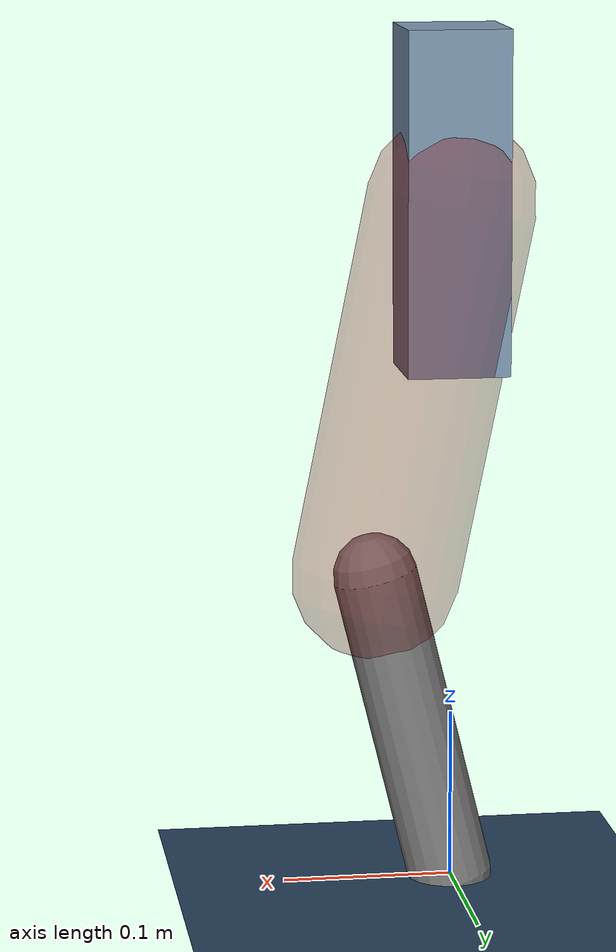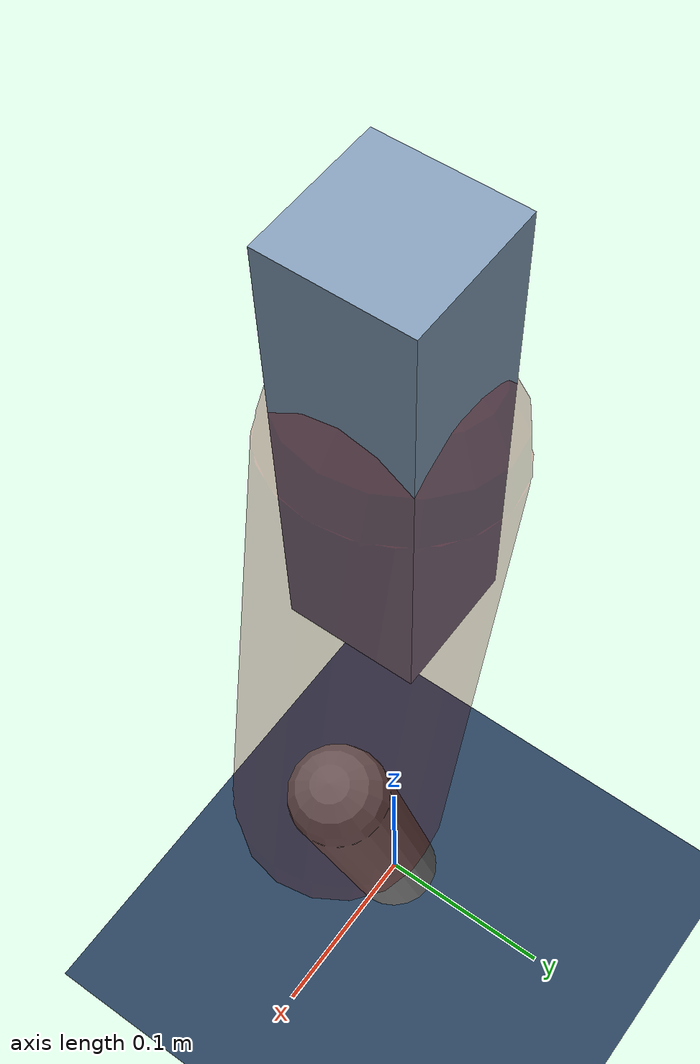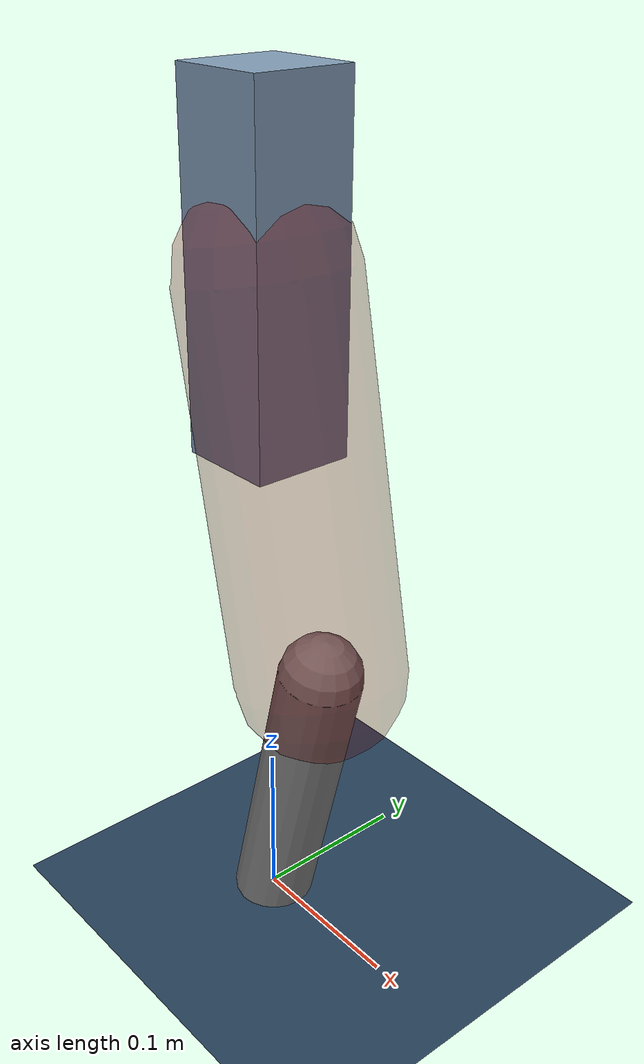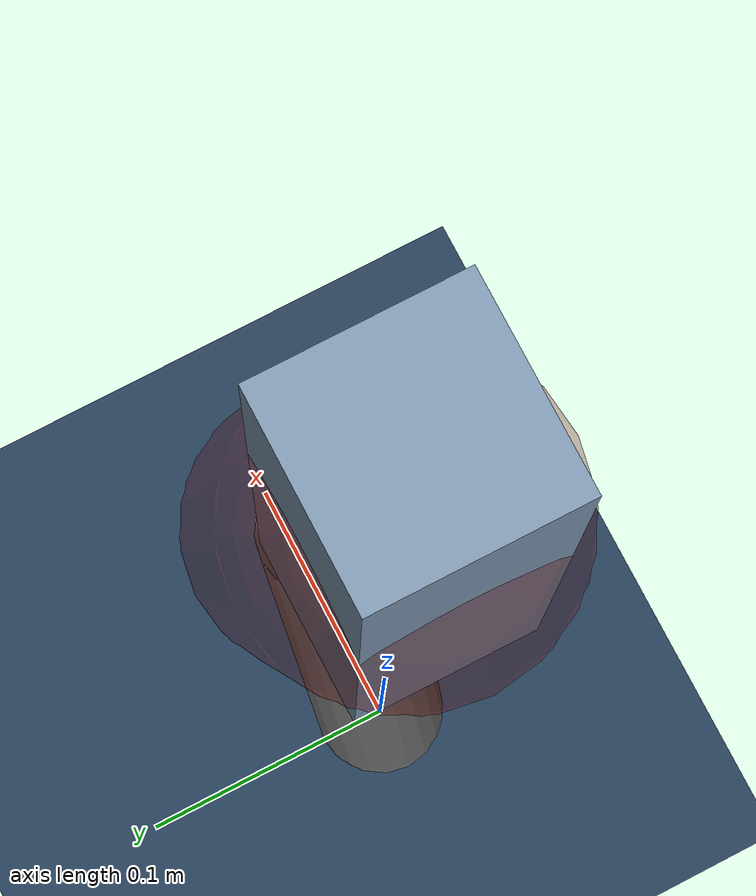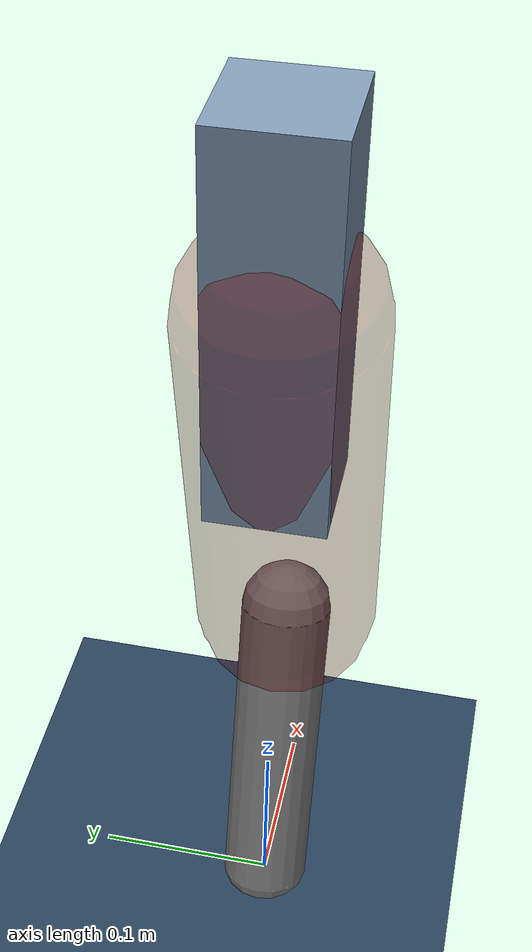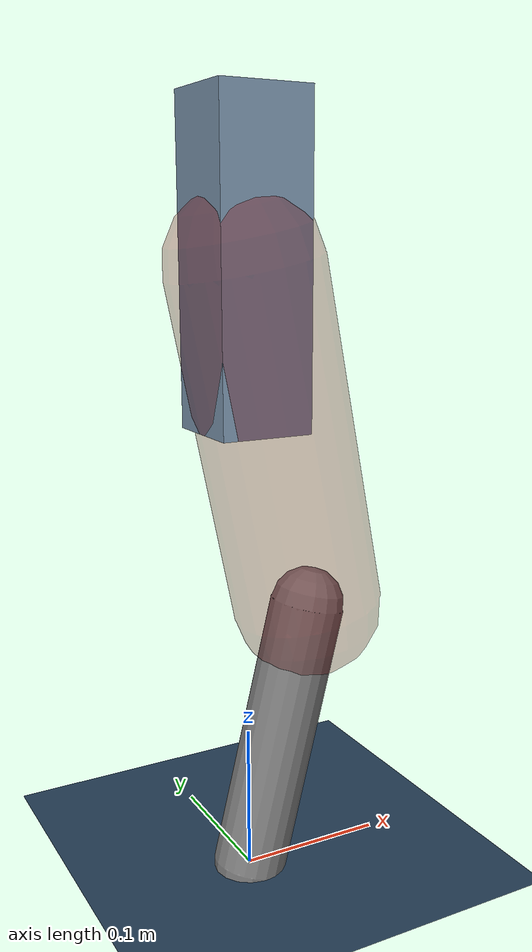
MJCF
<mujoco model="Hopper2D">
	<compiler inertiafromgeom="true" angle="radian" />
	<option timestep="0.001" integrator="implicit" cone="elliptic" solver="Newton" tolerance="1e-10" />

	<default>
		<geom contype="1" conaffinity="1" condim="3" friction="2 0.005 0.0001" solref="0.005 1" />
		<joint limited="true" damping="0.1" />
	</default>

	<asset>
		<texture name="skybox" type="skybox" builtin="gradient" rgb1=".4 .6 .8" rgb2="0 0 0" width="800" height="800" />
		<texture name="grid" type="2d" builtin="checker" rgb1=".1 .2 .3" rgb2=".2 .3 .4" width="300" height="300" mark="edge" markrgb=".2 .3 .4" />
		<material name="ground" texture="grid" texrepeat="1 1" texuniform="true" reflectance="0.1" />
		<material name="leg" rgba="0.5 0.6 0.7 1" />
	</asset>

	<worldbody>

		<geom name="floor" type="plane" size="5 5 0.25" material="ground" />

		<light directional="false" diffuse="0.8 0.8 0.8" specular="0.3 0.3 0.3" pos="0 0 2" dir="0 0 -1" />
		<light mode="targetbodycom" target="base" directional="false" diffuse="0.8 0.8 0.8" specular="0.3 0.3 0.3" pos="0 0 2" dir="0 0 -1" />

		<camera name="fixed" pos="0 -2 1" xyaxes="1 0 0 0 0 1" />
		<camera name="tracking" mode="trackcom" pos="0 -3 1" />

		<body name="root" pos="0 0 0.40626344803140735">
			<joint name="slide_x" type="slide" axis="1 0 0" range="-100 100" />
			<joint name="slide_z" type="slide" axis="0 0 1" range="0 10" />

			<body name="base" pos="0 0 0">
				<geom name="torso" type="box" size="0.03 0.03 0.1" mass="1.822" material="leg" />

				<body name="link1" pos="0 0 0" euler="0 1.369485051438252 0">
					<joint type="hinge" axis="0 -1 0" pos="0 0 0" name="hinge1" limited="true" range="-3.14 3.14" stiffness="0" damping="0.1" />
					<geom name="thigh" type="capsule" fromto="0 0 0 0.22591432487574903 0 0" size="0.05" rgba="0.5 0 0 0.3" mass="0.7946772446769476" />

					<body name="link2" pos="0.22591432487574903 0 0" euler="0 0.4409113532363565 0">
						<joint type="hinge" axis="0 -1 0" pos="0 0 0" name="hinge2" limited="true" range="-3.14 3.14" stiffness="0" damping="0.1" />
						<geom name="shank" type="capsule" fromto="0 0 0 0.19034912315565836 0 0" size="0.025" mass="0.3927142108400925" />

					</body>
				</body>
			</body>
		</body>
	</worldbody>

	<actuator>
		<motor name="torque1" joint="hinge1" ctrlrange="-23.12392237133881 23.12392237133881" ctrllimited="true" gear="1" />
		<motor name="torque2" joint="hinge2" ctrlrange="-22.916525806170178 22.916525806170178" ctrllimited="true" gear="1" />
	</actuator>
</mujoco>
